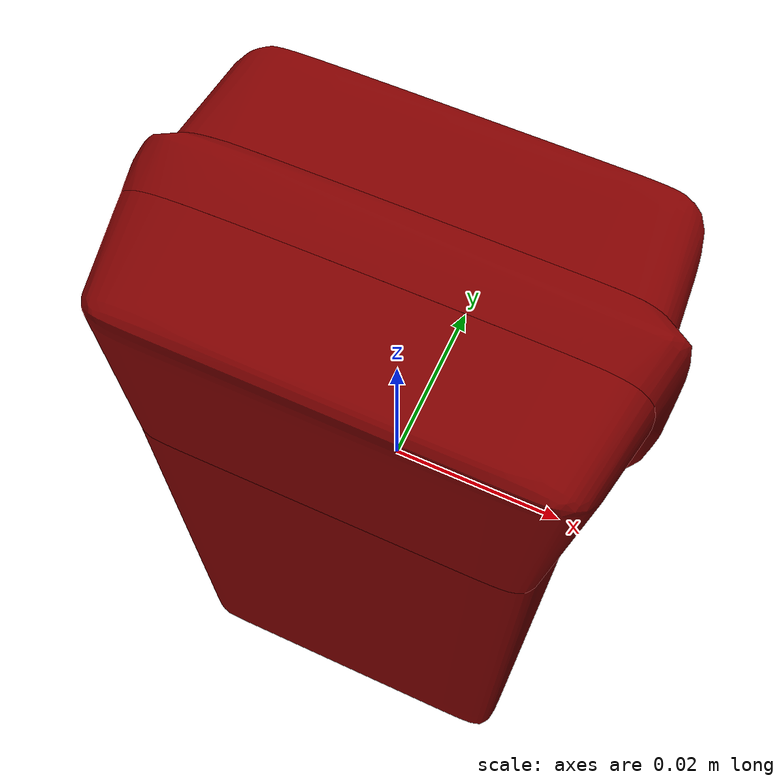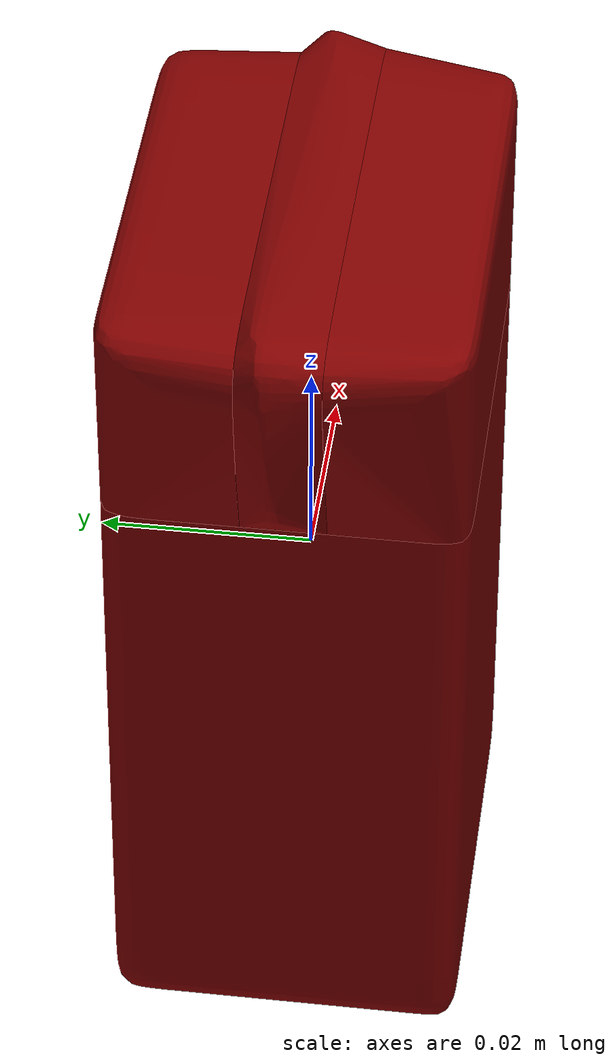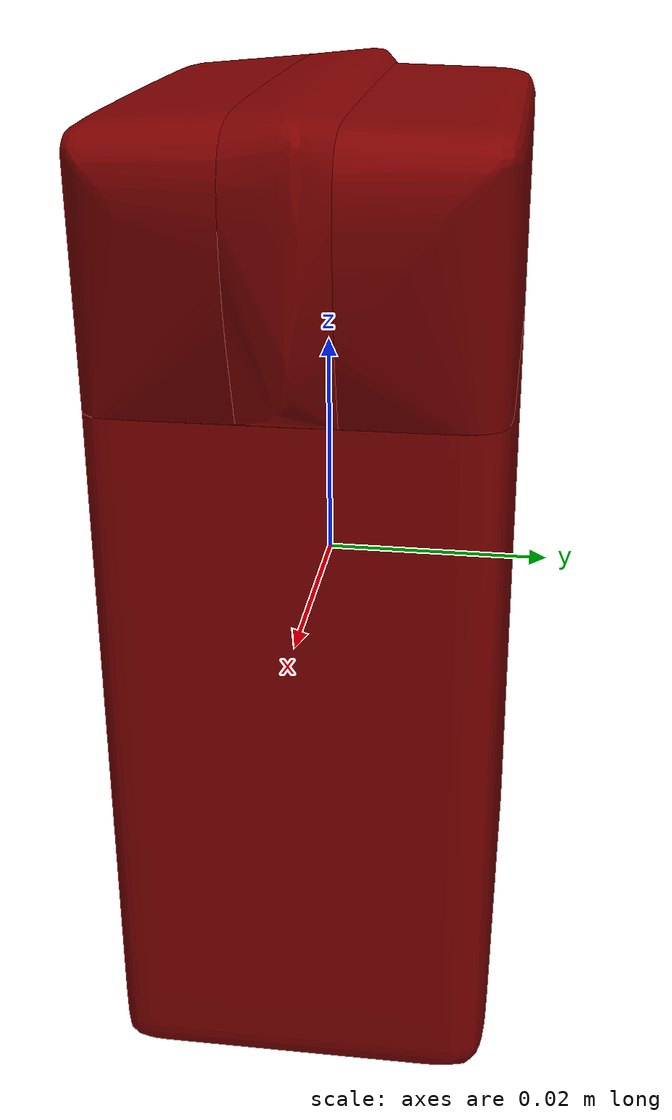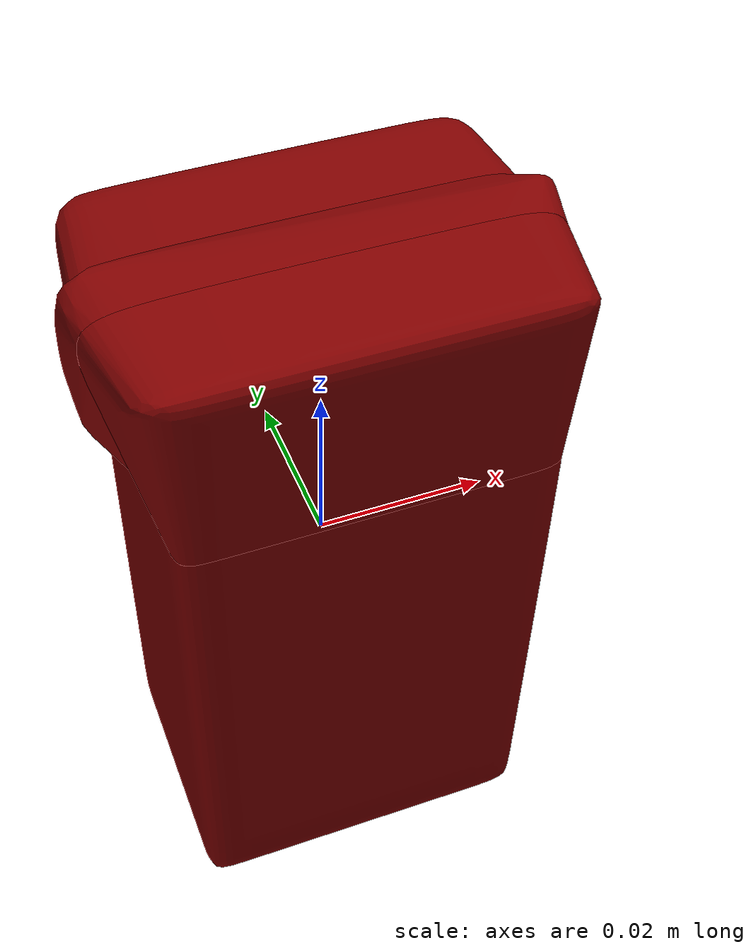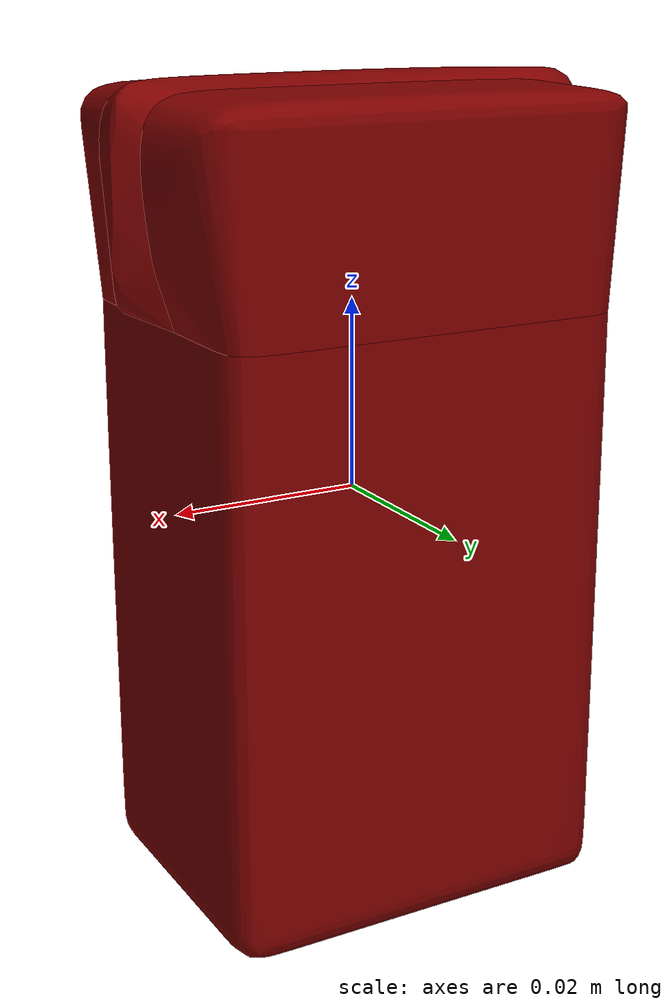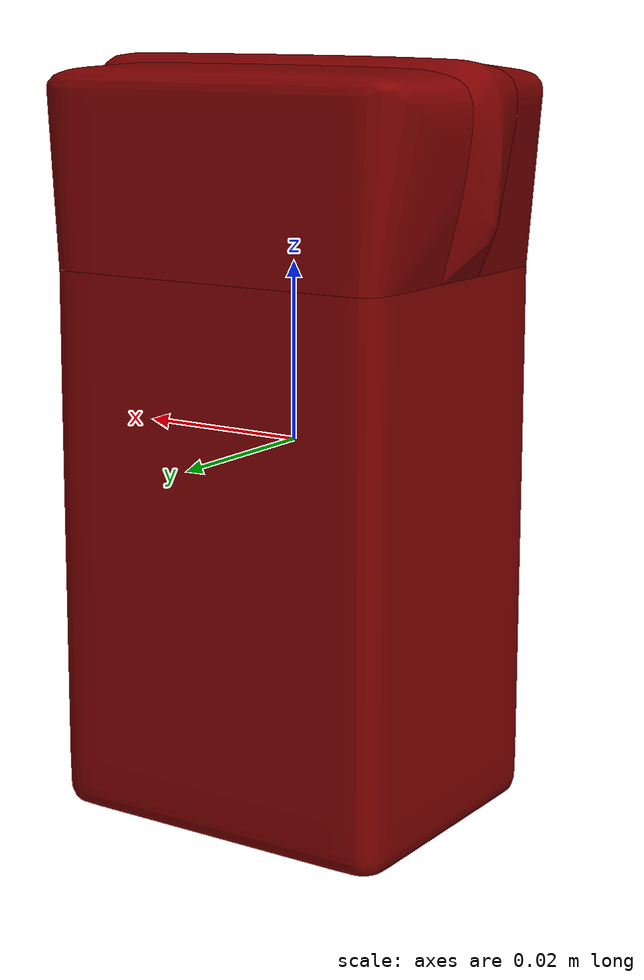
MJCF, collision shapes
<mujoco model="boxed_drink_5">
  <asset>
    <mesh file="visual/model_normalized_0.obj" name="model_normalized_0_vis" scale="0.083999999999999977 0.083999999999999977 0.083999999999999977" refquat="1.0 0.0 0.0 0.0" />
    <texture type="2d" name="image0" file="visual/image0.png" />
    <material name="lambert1.006" texture="image0" specular="0.5" shininess="0.25" />
    <mesh file="collision/collision_mesh_collision_0.obj" name="boxed_collision_mesh_0" scale="0.083999999999999977 0.083999999999999977 0.083999999999999977" refquat="1.0 0.0 0.0 0.0" />
    <mesh file="collision/collision_mesh_collision_1.obj" name="boxed_collision_mesh_1" scale="0.083999999999999977 0.083999999999999977 0.083999999999999977" refquat="1.0 0.0 0.0 0.0" />
    <mesh file="collision/collision_mesh_collision_2.obj" name="boxed_collision_mesh_2" scale="0.083999999999999977 0.083999999999999977 0.083999999999999977" refquat="1.0 0.0 0.0 0.0" />
    <mesh file="collision/collision_mesh_collision_3.obj" name="boxed_collision_mesh_3" scale="0.083999999999999977 0.083999999999999977 0.083999999999999977" refquat="1.0 0.0 0.0 0.0" />
  </asset>
  <default>
    <default class="region">
      <geom group="1" conaffinity="0" contype="0" rgba="0 1 0 0" />
    </default>
    <default class="collision">
      <geom group="0" rgba="0.5 0 0 0.5" density="1000.0" />
    </default>
  </default>
  <worldbody>
    <body>
      <body name="object">
        <geom solimp="0.998 0.998 0.001" solref="0.001 1" density="100" friction="0.95 0.3 0.1" type="mesh" mesh="model_normalized_0_vis" conaffinity="0" contype="0" group="1" material="lambert1.006" />
        <geom class="region" name="reg_bbox" type="box" pos="-3.6077999999895019e-07 0 -4.7334000000032174e-07" size="0.026108733419999992 0.016774894919999995 0.04245547529999999" />
        <geom mesh="boxed_collision_mesh_0" type="mesh" class="collision" />
        <geom mesh="boxed_collision_mesh_1" type="mesh" class="collision" />
        <geom mesh="boxed_collision_mesh_2" type="mesh" class="collision" />
        <geom mesh="boxed_collision_mesh_3" type="mesh" class="collision" />
      </body>
    <site name="bottom_site" pos="0 0 -0.042455948763379235" size="0.005" rgba="0 0 0 0" /><site name="top_site" pos="0 0 0.042455002071150778" size="0.005" rgba="0 0 0 0" /><site name="horizontal_radius_site" pos="0.026988967443406921 0 0" size="0.005" rgba="0 0 0 0" /></body>
  </worldbody>
</mujoco>
